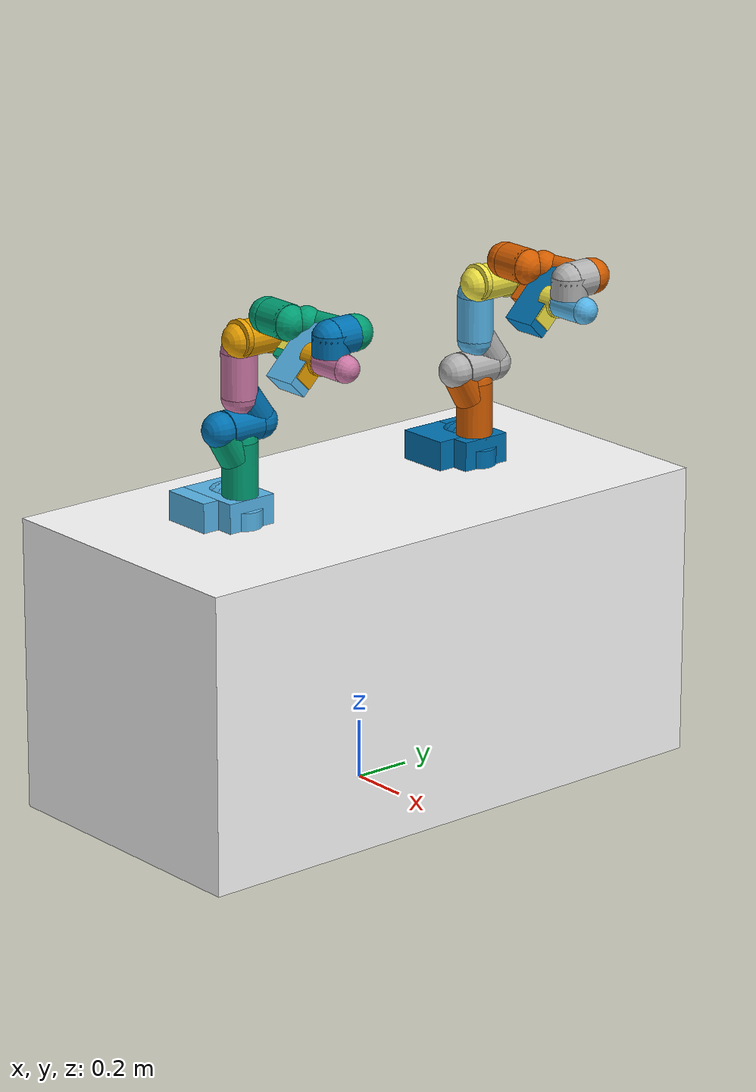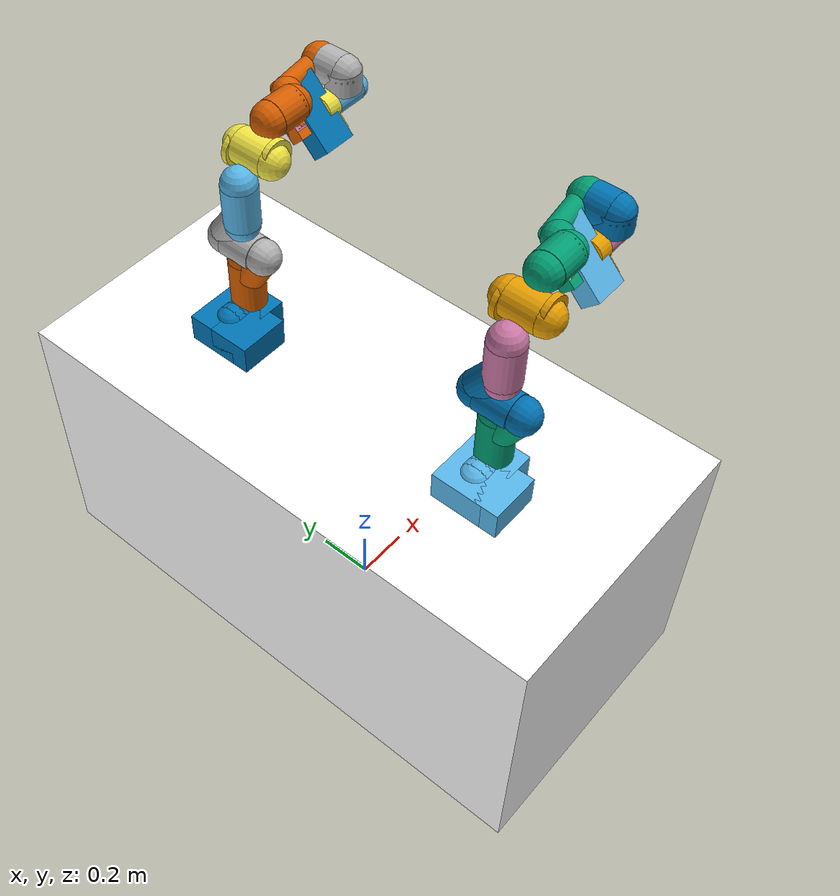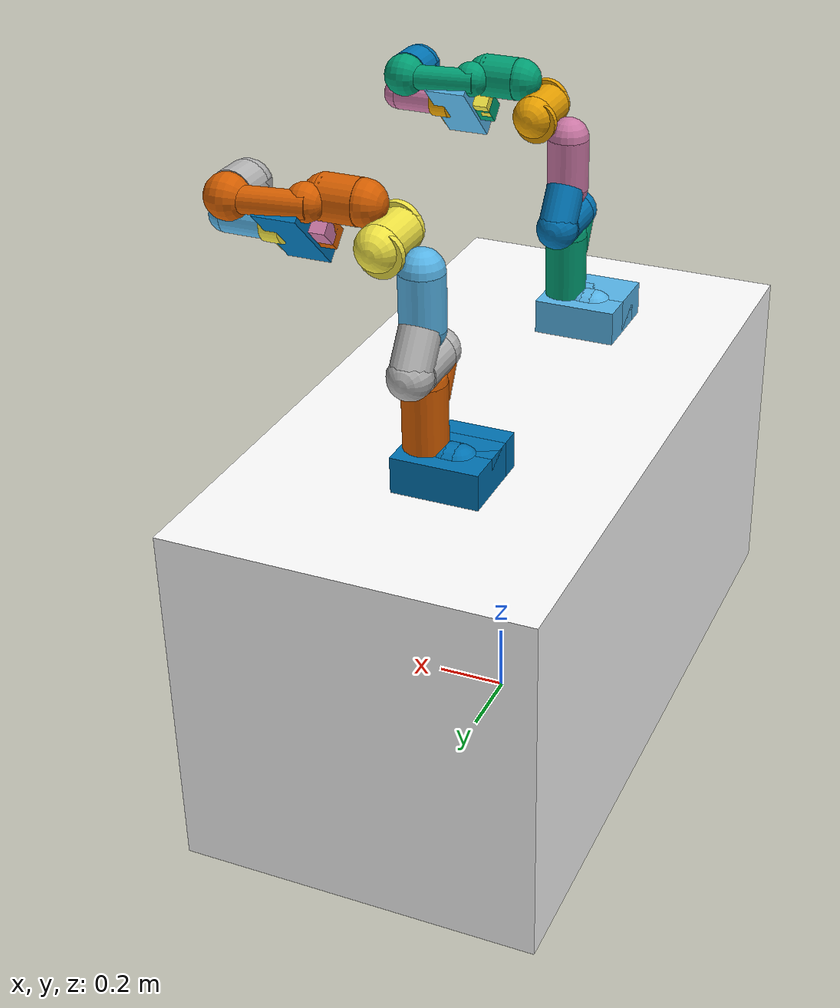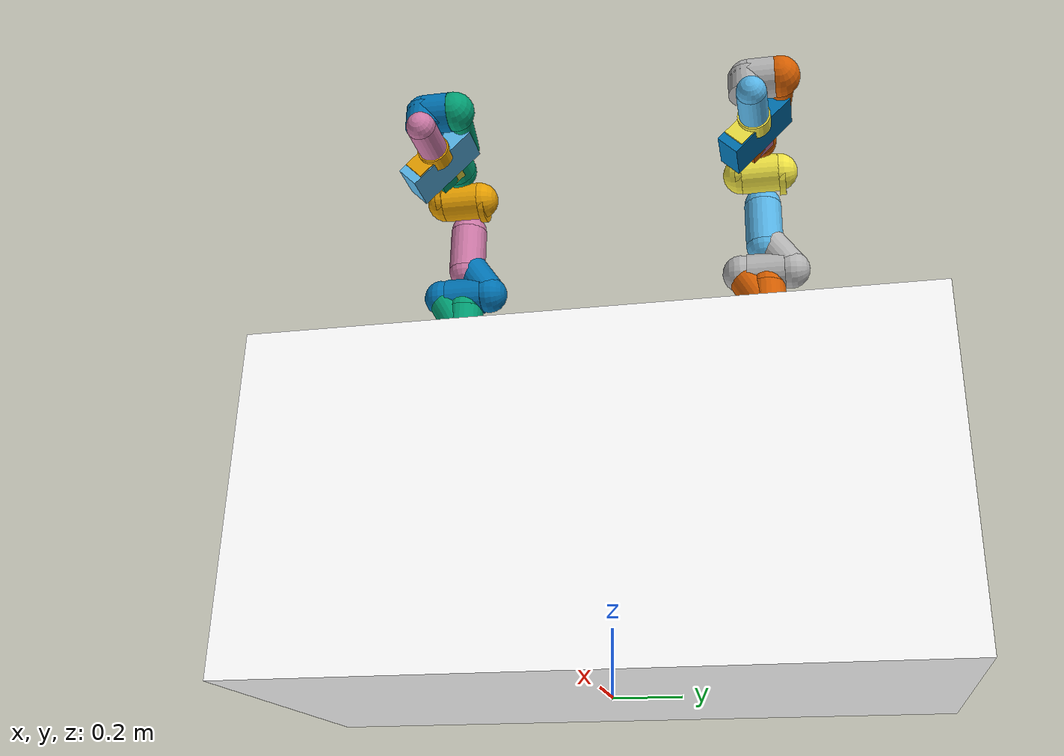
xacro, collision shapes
<?xml version="1.0" encoding="utf-8"?>
<robot xmlns:xacro="http://www.ros.org/wiki/xacro" name="panda">
  <xacro:arg name="arm_id_1" default="panda_1" />
  <xacro:arg name="arm_id_2" default="panda_2" />

  <xacro:include filename="$(find calibrated_franka_description)/robots/panda_arm.xacro"/>
  <xacro:include filename="$(find calibrated_franka_description)/robots/hand.xacro"/>

  <!-- box shaped table as base for the 2 Pandas -->
  <link name="base">
    <visual>
      <origin xyz="0 0 0.5" rpy="0 0 0"/>
      <geometry>
        <box size="1 2 1" />
      </geometry>
      <material name="White">
        <color rgba="1.0 1.0 1.0 1.0"/>
      </material>
    </visual>
    <collision>
      <origin xyz="0 0 0.5" rpy="0 0 0"/>
      <geometry>
        <box size="1 2 1" />
      </geometry>
    </collision>
  </link>

  <!-- right arm with gripper -->
  <xacro:panda_arm arm_id="$(arg arm_id_1)" connected_to="base"  xyz="0 -0.5 1" safety_distance="0.03"/>
  <xacro:hand ns="$(arg arm_id_1)" rpy="0 0 ${-pi/4}" connected_to="$(arg arm_id_1)_link8" safety_distance="0.03"/>

  <!-- left arm with gripper -->
  <xacro:panda_arm arm_id="$(arg arm_id_2)" connected_to="base"  xyz="0 0.5 1" safety_distance="0.03"/>
  <xacro:hand ns="$(arg arm_id_2)" rpy="0 0 ${-pi/4}" connected_to="$(arg arm_id_2)_link8" safety_distance="0.03"/>

</robot>

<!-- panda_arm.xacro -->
<robot xmlns:xacro="http://www.ros.org/wiki/xacro" name="panda">
  <!-- sd: Minimum safety distance in [m] by which the collision volumes are expanded and which is enforced during robot motions -->
  <!-- arm_id: Namespace of the panda arm. Serves to differentiate between arms in case of multiple instances. -->
  <xacro:macro name="panda_arm" params="arm_id:='panda' description_pkg:='calibrated_franka_description' connected_to:='' xyz:='0 0 0' rpy:='0 0 0' sd0:=0 sd1:=0 sd2:=0 sd3:=0 sd4:=0 sd5:=0 sd6:=0 sd7:=0 sd8:=0 cable:=0 a1:=0 d1:=0 theta1:=0 alpha1:=0 a2:=0 d2:=0 theta2:=0 alpha2:=0 a3:=0 d3:=0 theta3:=0 alpha3:=0 a4:=0 d4:=0 theta4:=0 alpha4:=0 a5:=0 d5:=0 theta5:=0 alpha5:=0 a6:=0 d6:=0 theta6:=0 alpha6:=0 a7:=0 d7:=0 theta7:=0 alpha7:=0 ">
    <xacro:unless value="${not connected_to}">
      <joint name="${arm_id}_joint_${connected_to}" type="fixed">
        <parent link="${connected_to}"/>
        <child link="${arm_id}_link0"/>
        <origin rpy="${rpy}" xyz="${xyz}"/>
      </joint>
    </xacro:unless>
    <link name="${arm_id}_link0">
      <visual>
        <geometry>
          <mesh filename="package://${description_pkg}/meshes/visual/link0.dae"/>
        </geometry>
      </visual>
      <collision>
        <origin xyz="-0.075 0 0.06" rpy="0 ${pi/2} 0"/>
        <geometry>
          <cylinder radius="${0.06+sd0}" length="0.03" />
        </geometry>
      </collision>

      <collision>
	<!--base-->
        <origin xyz="-0.06 0 0.05" rpy="0 0 0"/>
        <geometry>
          <box size="${0.24+sd0} ${0.18+sd0} ${0.1+sd0}" />
        </geometry>
      </collision>

      <collision>
	<!--base+front-->
        <origin xyz="0.02 0 0.03" rpy="0 0 0"/>
        <geometry>
          <cylinder radius="${0.06+sd0}" length="0.06" />
        </geometry>
      </collision>
      <collision>
	<!--base+cable-->
        <origin xyz="-0.09 ${-0.075-cable} 0.05" rpy="0 0 0"/>
        <geometry>
          <box size="${0.18+sd0} ${0.15+cable+sd0} ${0.1+sd0}" />
        </geometry>
      </collision>

      <collision>
        <origin xyz="-0.06 0 0.06" rpy="0 0 0"/>
        <geometry>
          <sphere radius="${0.06+sd0}" />
        </geometry>
      </collision>
      <collision>
        <origin xyz="-0.09 0 0.06" rpy="0 0 0"/>
        <geometry>
          <sphere radius="${0.06+sd0}" />
        </geometry>
      </collision>
    </link>
    <link name="${arm_id}_link1">
      <visual>
        <geometry>
          <mesh filename="package://${description_pkg}/meshes/visual/link1.dae"/>
        </geometry>
      </visual>
      <collision>
        <origin xyz="0 0 -0.1915" rpy="0 0 0"/>
        <geometry>
          <cylinder radius="${0.06+sd1}" length="0.2830" />
        </geometry>
      </collision>
      <collision>
        <origin xyz="0 0 -0.333" rpy="0 0 0"/>
        <geometry>
          <sphere radius="${0.06+sd1}" />
        </geometry>
      </collision>
      <collision>
        <origin xyz="0 0 -0.05" rpy="0 0 0"/>
        <geometry>
          <sphere radius="${0.06+sd1}" />
        </geometry>
      </collision>
      <collision>
        <origin xyz="0 -0.05 -0.05" rpy="${pi*30/180} 0 0"/>
        <geometry>
          <cylinder radius="${0.055+sd1}" length="0.12" />
        </geometry>
      </collision>
    </link>
    <link name="${arm_id}_link1_augmented">
    </link>
    <joint name="${arm_id}_joint1_augmented" type="fixed">
      <origin xyz="${a1} 0 0" rpy="${alpha1} 0 0"/>
      <parent link="${arm_id}_link0" />
      <child link="${arm_id}_link1_augmented" />
    </joint>
    <joint name="${arm_id}_joint1" type="revolute">
      <safety_controller k_position="100.0" k_velocity="40.0" soft_lower_limit="-2.8973" soft_upper_limit="2.8973"/>
      <origin rpy="0 0 ${theta1}" xyz="0 0 ${0.333+d1}"/>
      <parent link="${arm_id}_link1_augmented"/>
      <child link="${arm_id}_link1"/>
      <axis xyz="0 0 1"/>
      <limit effort="87" lower="-2.8973" upper="2.8973" velocity="2.1750"/>
    </joint>
    <link name="${arm_id}_link2">
      <visual>
        <geometry>
          <mesh filename="package://${description_pkg}/meshes/visual/link2.dae"/>
        </geometry>
      </visual>
      <collision>
        <origin xyz="0 -0.05 0.05" rpy="${pi*125/180} 0 0"/>
        <geometry>
          <cylinder radius="${0.055+sd2}" length="0.12" />
        </geometry>
      </collision>
      <collision>
        <origin xyz="0 0 0" rpy="0 0 0"/>
        <geometry>
          <cylinder radius="${0.06+sd2}" length="0.12" />
        </geometry>
      </collision>
      <collision>
        <origin xyz="0 0 -0.08" rpy="0 0 0"/>
        <geometry>
          <sphere radius="${0.06+sd2}" />
        </geometry>
      </collision>
      <collision>
        <origin xyz="0 0 0.08" rpy="0 0 0"/>
        <geometry>
          <sphere radius="${0.06+sd2}" />
        </geometry>
      </collision>
    </link>

    <link name="${arm_id}_link2_augmented">
    </link>
    <joint name="${arm_id}_joint2_augmented" type="fixed">
      <origin xyz="${a2} 0 0" rpy="${-pi/2+alpha2} 0 0"/>
      <parent link="${arm_id}_link1" />
      <child link="${arm_id}_link2_augmented" />
    </joint>
    <joint name="${arm_id}_joint2" type="revolute">
      <safety_controller k_position="100.0" k_velocity="40.0" soft_lower_limit="-1.7628" soft_upper_limit="1.7628"/>
      <origin rpy="0 0 ${theta2}" xyz="0 0 ${d2}"/>
      <parent link="${arm_id}_link2_augmented"/>
      <child link="${arm_id}_link2"/>
      <axis xyz="0 0 1"/>
      <limit effort="87" lower="-1.7628" upper="1.7628" velocity="2.1750"/>
    </joint>
    <link name="${arm_id}_link3">
      <visual>
        <geometry>
          <mesh filename="package://${description_pkg}/meshes/visual/link3.dae"/>
        </geometry>
      </visual>
      <collision>
	<!--link3 body-->
        <origin xyz="0 0 -0.145" rpy="0 0 0"/>
        <geometry>
          <cylinder radius="${0.06+sd3}" length="0.15" />
        </geometry>
      </collision>
      <collision>
        <origin xyz="0 0 -0.22" rpy="0 0 0"/>
        <geometry>
          <sphere radius="${0.06+sd3}" />
        </geometry>
      </collision>
      <collision>
        <origin xyz="0 0 -0.07" rpy="0 0 0"/>
        <geometry>
          <sphere radius="${0.06+sd3}" />
        </geometry>
      </collision>
    </link>

    <link name="${arm_id}_link3_augmented">
    </link>
    <joint name="${arm_id}_joint3_augmented" type="fixed">
      <origin xyz="${a3} 0 0" rpy="${pi/2+alpha3} 0 0"/>
      <parent link="${arm_id}_link2" />
      <child link="${arm_id}_link3_augmented" />
    </joint>
    <joint name="${arm_id}_joint3" type="revolute">
      <safety_controller k_position="100.0" k_velocity="40.0" soft_lower_limit="-2.8973" soft_upper_limit="2.8973"/>
      <origin rpy="0 0 ${theta3}" xyz="0 0 ${0.316+d3}"/>
      <parent link="${arm_id}_link3_augmented"/>
      <child link="${arm_id}_link3"/>
      <axis xyz="0 0 1"/>
      <limit effort="87" lower="-2.8973" upper="2.8973" velocity="2.1750"/>
    </joint>
    <link name="${arm_id}_link4">
      <visual>
        <geometry>
          <mesh filename="package://${description_pkg}/meshes/visual/link4.dae"/>
        </geometry>
      </visual>
      <collision>
	<!--link4 body-->
        <origin xyz="0 0 0" rpy="0 0 0"/>
        <geometry>
          <cylinder radius="${0.06+sd4}" length="0.12" />
        </geometry>
      </collision>
      <collision>
        <origin xyz="0 0 0.06" rpy="0 0 0"/>
        <geometry>
          <sphere radius="${0.06+sd4}" />
        </geometry>
      </collision>
      <collision>
        <origin xyz="-0.01 0.01 0.07" rpy="0 0 0"/>
        <geometry>
          <cylinder radius="${0.06+sd4}" length="0.02" />
        </geometry>
      </collision>
      <collision>
        <origin xyz="0.01 -0.01 -0.07" rpy="0 0 0"/>
        <geometry>
          <cylinder radius="${0.06+sd4}" length="0.02" />
        </geometry>
      </collision>
      <collision>
        <origin xyz="0 0 -0.06" rpy="0 0 0"/>
        <geometry>
          <sphere radius="${0.06+sd4}" />
        </geometry>
      </collision>
    </link>

    <link name="${arm_id}_link4_augmented">
    </link>
    <joint name="${arm_id}_joint4_augmented" type="fixed">
      <origin xyz="${0.0825+a4} 0 0" rpy="${pi/2+alpha4} 0 0"/>
      <parent link="${arm_id}_link3" />
      <child link="${arm_id}_link4_augmented" />
    </joint>

    <joint name="${arm_id}_joint4" type="revolute">
      <safety_controller k_position="100.0" k_velocity="40.0" soft_lower_limit="-3.0718" soft_upper_limit="-0.0698"/>
      <origin rpy="0 0 ${theta4}" xyz="0 0 ${d4}"/>
      <parent link="${arm_id}_link4_augmented"/>
      <child link="${arm_id}_link4"/>
      <axis xyz="0 0 1"/>
      <limit effort="87" lower="-3.0718" upper="-0.0698" velocity="2.1750"/>
    </joint>
    <link name="${arm_id}_link5">
      <visual>
        <geometry>
          <mesh filename="package://${description_pkg}/meshes/visual/link5.dae"/>
        </geometry>
      </visual>
      <collision>
        <origin xyz="0 0 -0.26" rpy="0 0 0"/>
        <geometry>
          <cylinder radius="${0.06+sd5}" length="0.1" />
        </geometry>
      </collision>
      <collision>
	<!--almost link 4-->
        <origin xyz="0 0 -0.32" rpy="0 0 0"/>
        <geometry>
          <sphere radius="${0.06+sd5}" />
        </geometry>
      </collision>
      <collision>
        <origin xyz="0 0 -0.22" rpy="0 0 0"/>
        <geometry>
          <sphere radius="${0.06+sd5}" />
        </geometry>
      </collision>
      <collision>
	<!--link5 long body part-->
        <origin xyz="0 0.08 -0.12" rpy="${-pi*8/180} 0 0"/>
        <geometry>
          <cylinder radius="${0.035+sd5}" length="0.17" />
        </geometry>
      </collision>
      <collision>
	<!--curve part-->
        <origin xyz="0 0.085 0" rpy="0 0 0"/>
        <geometry>
          <sphere radius="${0.06+sd5}" />
        </geometry>
      </collision>
      <collision>
        <origin xyz="0 0.05 -0.19" rpy="0 0 0"/>
        <geometry>
          <sphere radius="${0.05+sd5}" />
        </geometry>
      </collision>

    </link>

    <link name="${arm_id}_link5_augmented">
    </link>
    <joint name="${arm_id}_joint5_augmented" type="fixed">
      <origin xyz="${-0.0825+a5} 0 0" rpy="${-pi/2+alpha5} 0 0"/>
      <parent link="${arm_id}_link4" />
      <child link="${arm_id}_link5_augmented" />
    </joint>

    <joint name="${arm_id}_joint5" type="revolute">
      <safety_controller k_position="100.0" k_velocity="40.0" soft_lower_limit="-2.8973" soft_upper_limit="2.8973"/>
      <origin rpy="0 0 ${theta5}" xyz="0 0 ${0.384+d5}"/>
      <parent link="${arm_id}_link5_augmented"/>
      <child link="${arm_id}_link5"/>
      <axis xyz="0 0 1"/>
      <limit effort="12" lower="-2.8973" upper="2.8973" velocity="2.6100"/>
    </joint>
    <link name="${arm_id}_link6">
      <visual>
        <geometry>
          <mesh filename="package://${description_pkg}/meshes/visual/link6.dae"/>
        </geometry>
      </visual>
      <collision>
        <origin xyz="0 0 -0.03" rpy="0 0 0"/>
        <geometry>
          <cylinder radius="${0.06+sd6}" length="0.08" />
        </geometry>
      </collision>
      <collision>
        <origin xyz="0.02 0 0.01" rpy="0 ${pi/2} 0"/>
        <geometry>
          <cylinder radius="${0.06+sd6}" length="0.07" />
        </geometry>
      </collision>
      <collision>
	<!--curve part-->
        <origin xyz="0 0 0.01" rpy="0 0 0"/>
        <geometry>
          <sphere radius="${0.06+sd6}" />
        </geometry>
      </collision>
      <collision>
	<!--link6and5 connection part-->
        <origin xyz="0 0 -0.08" rpy="0 0 0"/>
        <geometry>
          <sphere radius="${0.051+sd6}" />
        </geometry>
      </collision>
    </link>

    <link name="${arm_id}_link6_augmented">
    </link>
    <joint name="${arm_id}_joint6_augmented" type="fixed">
      <origin xyz="${a6} 0 0" rpy="${pi/2+alpha6} 0 0"/>
      <parent link="${arm_id}_link5" />
      <child link="${arm_id}_link6_augmented" />
    </joint>

    <joint name="${arm_id}_joint6" type="revolute">
      <safety_controller k_position="100.0" k_velocity="40.0" soft_lower_limit="-0.0175" soft_upper_limit="3.7525"/>
      <origin rpy="0 0 ${theta6}" xyz="0 0 ${d6}"/>
      <parent link="${arm_id}_link6_augmented"/>
      <child link="${arm_id}_link6"/>
      <axis xyz="0 0 1"/>
      <limit effort="12" lower="-0.0175" upper="3.7525" velocity="2.6100"/>
    </joint>
    <link name="${arm_id}_link7">
      <visual>
        <geometry>
          <mesh filename="package://${description_pkg}/meshes/visual/link7.dae"/>
        </geometry>
      </visual>
      <collision>
	<!--link7's body-->
        <origin xyz="0 0 0.01" rpy="0 0 0"/>
        <geometry>
          <cylinder radius="${0.045+sd7}" length="0.14" />
        </geometry>
      </collision>
      <collision>
	<!--link7and8 connection part-->
        <origin xyz="0 0 0.08" rpy="0 0 0"/>
        <geometry>
          <sphere radius="${0.04+sd7}"  />
        </geometry>
      </collision>
      <collision>
	<!--button part-->
        <origin xyz="0 0 -0.06" rpy="0 0 0"/>
        <geometry>
          <sphere radius="${0.045+sd7}"  />
        </geometry>
      </collision>
    </link>

    <link name="${arm_id}_link7_augmented">
    </link>
    <joint name="${arm_id}_joint7_augmented" type="fixed">
      <origin xyz="${0.088+a7} 0 0" rpy="${pi/2+alpha7} 0 0"/>
      <parent link="${arm_id}_link6" />
      <child link="${arm_id}_link7_augmented" />
    </joint>

    <joint name="${arm_id}_joint7" type="revolute">
      <safety_controller k_position="100.0" k_velocity="40.0" soft_lower_limit="-2.8973" soft_upper_limit="2.8973"/>
      <origin rpy="0 0 ${theta7}" xyz="0 0 ${d7}"/>
      <parent link="${arm_id}_link7_augmented"/>
      <child link="${arm_id}_link7"/>
      <axis xyz="0 0 1"/>
      <limit effort="12" lower="-2.8973" upper="2.8973" velocity="2.6100"/>
    </joint>
    <link name="${arm_id}_link8">
      <collision>
	<!--button part-->
        <origin xyz="0.04 0.04 -0.03" rpy="0 0 ${pi/4}"/>
        <geometry>
          <box size="${0.07+sd8} ${0.07+sd8} ${0.02+sd8}" />
        </geometry>
      </collision>
      <collision>

	<!--rotate part-->
        <origin xyz="0 0 -0.028" rpy="0 0 0"/>
        <geometry>
          <cylinder radius="${0.05+sd8}"  length="0.05"  />
        </geometry>
      </collision>
    </link>
    <joint name="${arm_id}_joint8" type="fixed">
      <origin rpy="0 0 0" xyz="0 0 0.107"/>
      <parent link="${arm_id}_link7"/>
      <child link="${arm_id}_link8"/>
    </joint>
  </xacro:macro>
</robot>

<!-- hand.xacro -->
<robot xmlns:xacro="http://www.ros.org/wiki/xacro" name="hand">
  <!-- safety_distance: Minimum safety distance in [m] by which the collision volumes are expanded and which is enforced during robot motions -->
  <xacro:macro name="hand" params="connected_to:='' ns:='' rpy:='0 0 0' xyz:='0 0 0' safety_distance:=0">
    <xacro:unless value="${connected_to == ''}">
      <joint name="${ns}_hand_joint" type="fixed">
        <parent link="${connected_to}"/>
        <child link="${ns}_hand"/>
        <origin xyz="${xyz}" rpy="${rpy}"/>
      </joint>
    </xacro:unless>
    <link name="${ns}_hand">
      <visual>
        <geometry>
          <mesh filename="package://calibrated_franka_description/meshes/visual/hand.dae"/>
        </geometry>
      </visual>
      <collision>
        <origin xyz="0 0 0.025" rpy="0 0 0"/>
        <geometry>
          <box size="${0.045+safety_distance} ${0.21+safety_distance} ${0.09+safety_distance}"  />
        </geometry>
      </collision>

    </link>
    <link name="${ns}_leftfinger">
      <visual>
        <geometry>
          <mesh filename="package://calibrated_franka_description/meshes/visual/finger.dae"/>
        </geometry>
      </visual>
      <collision>
        <origin xyz="0 0.014 0.03" rpy="0 0 0"/>
        <geometry>
          <box size="${0.025+safety_distance} ${0.03+safety_distance} ${0.05+safety_distance}"  />
        </geometry>
      </collision>
    </link>
    <link name="${ns}_rightfinger">
      <visual>
        <origin xyz="0 0 0" rpy="0 0 ${pi}"/>
        <geometry>
          <mesh filename="package://calibrated_franka_description/meshes/visual/finger.dae"/>
        </geometry>
      </visual>
      <collision>
        <origin xyz="0 -0.014 0.03" rpy="0 0 0"/>
        <geometry>
          <box size="${0.025+safety_distance} ${0.03+safety_distance} ${0.05+safety_distance}"  />
        </geometry>
      </collision>
   </link>
    <joint name="${ns}_finger_joint1" type="prismatic">
      <parent link="${ns}_hand"/>
      <child link="${ns}_leftfinger"/>
      <origin xyz="0 0 0.0584" rpy="0 0 0"/>
      <axis xyz="0 1 0"/>
      <limit effort="20" lower="0.0" upper="0.04" velocity="0.2"/>
    </joint>
    <joint name="${ns}_finger_joint2" type="prismatic">
      <parent link="${ns}_hand"/>
      <child link="${ns}_rightfinger"/>
      <origin xyz="0 0 0.0584" rpy="0 0 0"/>
      <axis xyz="0 -1 0"/>
      <limit effort="20" lower="0.0" upper="0.04" velocity="0.2"/>
      <mimic joint="${ns}_finger_joint1" />
    </joint>
  </xacro:macro>
</robot>
